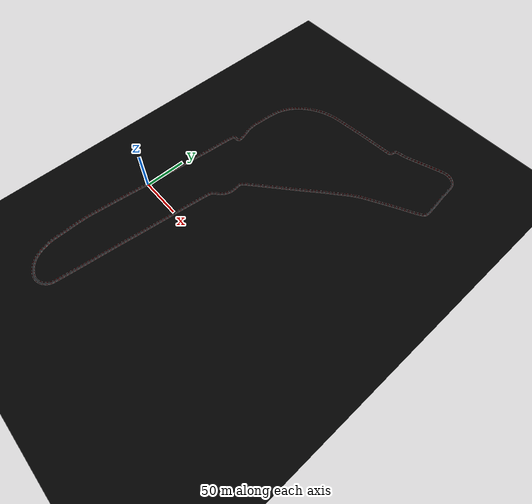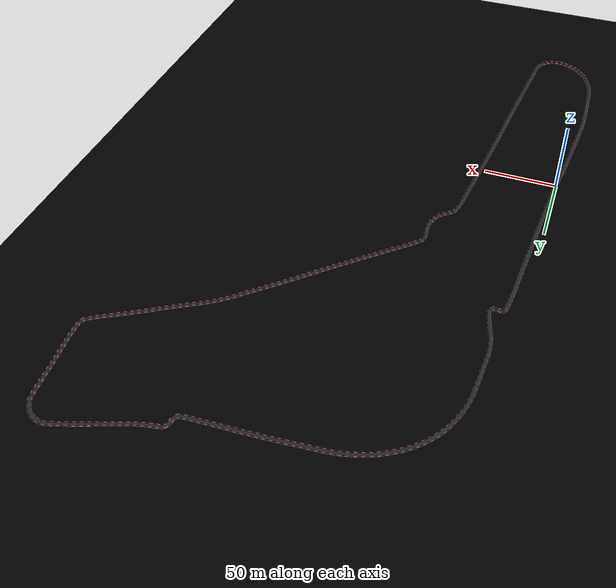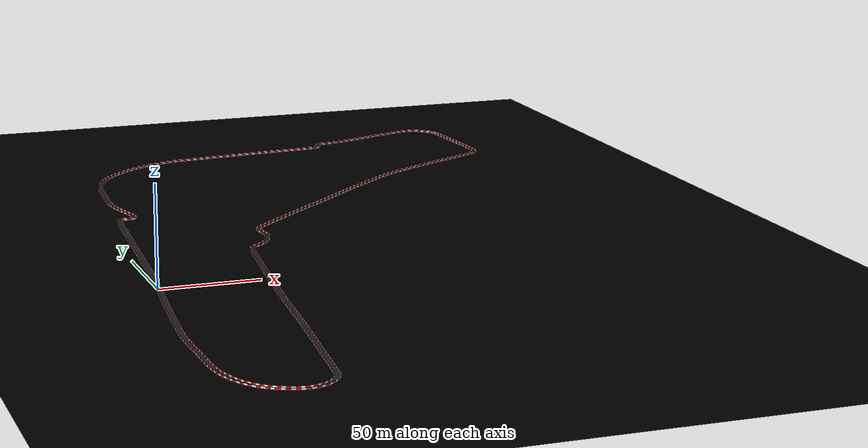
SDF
<?xml version='1.0' encoding='utf-8'?>
<sdf version="1.9">
  <world name="monza">
    <gravity>0 0 -9.81</gravity>
    <physics name="physics" type="ignored">
      <max_step_size>.001</max_step_size>
      <real_time_factor>1.0</real_time_factor>
    </physics>
    <plugin filename="gz-sim-physics-system" name="gz::sim::systems::Physics" />
    <plugin filename="gz-sim-user-commands-system" name="gz::sim::systems::UserCommands" />
    <plugin filename="gz-sim-scene-broadcaster-system" name="gz::sim::systems::SceneBroadcaster" />
    <plugin filename="gz-sim-sensors-system" name="gz::sim::systems::Sensors">
      <render_engine>ogre2</render_engine>
    </plugin>
    <scene>
      <ambient>0.65 0.65 0.65 1</ambient>
      <background>0 0 0 1</background>
      <grid>false</grid>
      <origin_visual>false</origin_visual>
      <shadows>true</shadows>
    </scene>
    <light name="sun" type="directional">
      <pose>0 0 100 0 0 0</pose>
      <visualize>false</visualize>
      <diffuse>0.85 0.85 0.85 1</diffuse>
      <specular>0.1 0.1 0.1 1</specular>
      <direction>-0.3 0.2 -1</direction>
      <cast_shadows>true</cast_shadows>
      <attenuation>
        <range>2000</range>
        <constant>1</constant>
        <linear>0</linear>
        <quadratic>0</quadratic>
      </attenuation>
    </light>
    <model name="ground">
      <static>true</static>
      <pose>0 0 -0.05 0 0 0</pose>
      <link name="ground">
        <collision name="ground_collision">
          <geometry>
            <plane>
              <normal>0 0 1</normal>
              <size>2000 2000</size>
            </plane>
          </geometry>
        </collision>
        <visual name="ground_visual">
          <geometry>
            <plane>
              <normal>0 0 1</normal>
              <size>2000 2000</size>
            </plane>
          </geometry>
          <material>
            <ambient>0 0 0 1</ambient>
            <diffuse>0 0 0 1</diffuse>
            <specular>0 0 0 1</specular>
          </material>
        </visual>
      </link>
    </model>
    <include>
      <uri>model://urrc_monza</uri>
      <name>urrc_monza</name>
    </include>
  </world>
</sdf>

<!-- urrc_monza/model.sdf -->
<sdf version="1.9">
  <model name="urrc_monza">
    <static>true</static>
    <link name="track">
      <collision name="road_collision">
        <geometry>
          <mesh>
            <uri>model://urrc_monza/meshes/road_collision.obj</uri>
          </mesh>
        </geometry>
        <surface>
          <friction>
            <ode>
              <mu>1.0</mu>
              <mu2>1.0</mu2>
            </ode>
          </friction>
        </surface>
      </collision>
      <collision name="wall_outer_collision">
        <geometry>
          <mesh>
            <uri>model://urrc_monza/meshes/wall_outer_collision.obj</uri>
          </mesh>
        </geometry>
        <surface>
          <friction>
            <ode>
              <mu>1.0</mu>
              <mu2>1.0</mu2>
            </ode>
          </friction>
        </surface>
      </collision>
      <collision name="wall_inner_collision">
        <geometry>
          <mesh>
            <uri>model://urrc_monza/meshes/wall_inner_collision.obj</uri>
          </mesh>
        </geometry>
        <surface>
          <friction>
            <ode>
              <mu>1.0</mu>
              <mu2>1.0</mu2>
            </ode>
          </friction>
        </surface>
      </collision>
      <visual name="road_visual">
        <cast_shadows>true</cast_shadows>
        <geometry>
          <mesh>
            <uri>model://urrc_monza/meshes/road.obj</uri>
          </mesh>
        </geometry>
        <material>
          <ambient>0.14 0.15 0.16 1</ambient>
          <diffuse>0.14 0.15 0.16 1</diffuse>
          <specular>0.02 0.02 0.02 1</specular>
        </material>
      </visual>
      <visual name="markings_visual">
        <cast_shadows>false</cast_shadows>
        <geometry>
          <mesh>
            <uri>model://urrc_monza/meshes/markings.obj</uri>
          </mesh>
        </geometry>
        <material>
          <ambient>0.96 0.96 0.94 1</ambient>
          <diffuse>0.96 0.96 0.94 1</diffuse>
          <specular>0.02 0.02 0.02 1</specular>
        </material>
      </visual>
      <visual name="wall_outer_red_visual">
        <cast_shadows>true</cast_shadows>
        <geometry>
          <mesh>
            <uri>model://urrc_monza/meshes/wall_outer_red.obj</uri>
          </mesh>
        </geometry>
        <material>
          <ambient>0.78 0.035 0.045 1</ambient>
          <diffuse>0.78 0.035 0.045 1</diffuse>
          <specular>0.02 0.02 0.02 1</specular>
        </material>
      </visual>
      <visual name="wall_inner_red_visual">
        <cast_shadows>true</cast_shadows>
        <geometry>
          <mesh>
            <uri>model://urrc_monza/meshes/wall_inner_red.obj</uri>
          </mesh>
        </geometry>
        <material>
          <ambient>0.78 0.035 0.045 1</ambient>
          <diffuse>0.78 0.035 0.045 1</diffuse>
          <specular>0.02 0.02 0.02 1</specular>
        </material>
      </visual>
      <visual name="wall_outer_white_visual">
        <cast_shadows>true</cast_shadows>
        <geometry>
          <mesh>
            <uri>model://urrc_monza/meshes/wall_outer_white.obj</uri>
          </mesh>
        </geometry>
        <material>
          <ambient>0.9 0.9 0.88 1</ambient>
          <diffuse>0.9 0.9 0.88 1</diffuse>
          <specular>0.02 0.02 0.02 1</specular>
        </material>
      </visual>
      <visual name="wall_inner_white_visual">
        <cast_shadows>true</cast_shadows>
        <geometry>
          <mesh>
            <uri>model://urrc_monza/meshes/wall_inner_white.obj</uri>
          </mesh>
        </geometry>
        <material>
          <ambient>0.9 0.9 0.88 1</ambient>
          <diffuse>0.9 0.9 0.88 1</diffuse>
          <specular>0.02 0.02 0.02 1</specular>
        </material>
      </visual>
    </link>
  </model>
</sdf>
